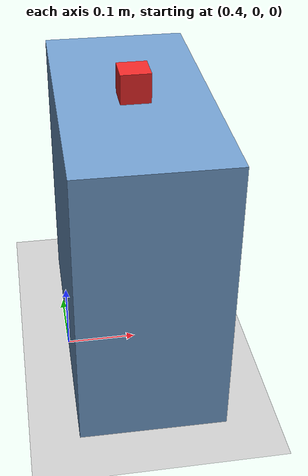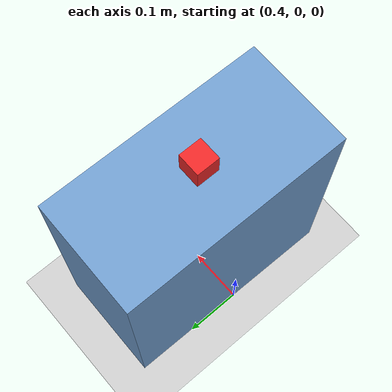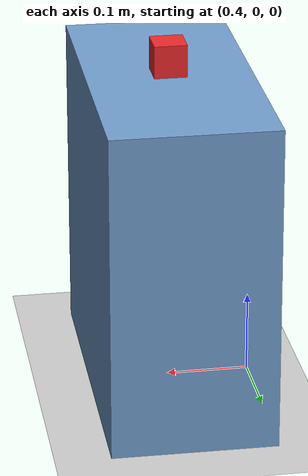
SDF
<sdf version="1.6">
 <world name="default">
  <light name="sun" type="directional">
   <pose>0 0 10 0 -0 0</pose>
   <diffuse>0.8 0.8 0.8 1</diffuse>
   <specular>0.2 0.2 0.2 1</specular>
   <attenuation>
    <range>1000</range>
    <constant>0.9</constant>
    <linear>0.01</linear>
    <quadratic>0.001</quadratic>
   </attenuation>
   <direction>-0.5 0.1 -0.9</direction>
  </light>
  <model name="ground_plane">
   <static>1</static>
   <link name="link">
    <collision name="collision">
     <geometry><plane><normal>0 0 1</normal><size>100 100</size></plane></geometry>
     <surface>
      <contact><collide_bitmask>65535</collide_bitmask></contact>
      <friction><ode><mu>100</mu><mu2>50</mu2></ode></friction>
     </surface>
    </collision>
    <visual name="visual">
     <cast_shadows>0</cast_shadows>
     <geometry><plane><normal>0 0 1</normal><size>100 100</size></plane></geometry>
     <material>
      <script><uri>file://media/materials/scripts/gazebo.material</uri><name>Gazebo/Grey</name></script>
     </material>
    </visual>
   </link>
  </model>
  <gravity>0 0 -9.8</gravity>
  <magnetic_field>6e-06 2.3e-05 -4.2e-05</magnetic_field>
  <atmosphere type="adiabatic"/>
  <physics name="default_physics" default="0" type="ode">
   <max_step_size>0.001</max_step_size>
   <real_time_factor>1</real_time_factor>
   <real_time_update_rate>1000</real_time_update_rate>
  </physics>
  <scene><ambient>0.4 0.4 0.4 1</ambient><background>0.7 0.7 0.7 1</background><shadows>1</shadows></scene>
  <audio><device>default</device></audio>
  <spherical_coordinates>
   <surface_model>EARTH_WGS84</surface_model>
   <latitude_deg>0</latitude_deg>
   <longitude_deg>0</longitude_deg>
   <elevation>0</elevation>
   <heading_deg>0</heading_deg>
  </spherical_coordinates>
  <model name="box">
   <link name="link">
    <inertial>
     <mass>1</mass>
     <inertia>
      <ixx>0.166667</ixx>
      <ixy>0</ixy>
      <ixz>0</ixz>
      <iyy>0.166667</iyy>
      <iyz>0</iyz>
      <izz>0.166667</izz>
     </inertia>
    </inertial>
    <visual name="visual">
     <geometry><box><size>0.2 0.4 0.4</size></box></geometry>
     <material>
      <script><name>Gazebo/Grey</name><uri>file://media/materials/scripts/gazebo.material</uri></script>
      <shader type="vertex"><normal_map>__default__</normal_map></shader>
      <ambient>0.447 0.624 0.812 1</ambient>
      <diffuse>0.7 0.7 0.7 1</diffuse>
      <specular>0.01 0.01 0.01 1</specular>
      <emissive>0 0 0 1</emissive>
     </material>
    </visual>
    <collision name="collision">
     <geometry><box><size>0.2 0.4 0.4</size></box></geometry>
     <surface>
      <friction>
       <ode><mu>1</mu><mu2>1</mu2><fdir1>0 0 0</fdir1><slip1>0</slip1><slip2>0</slip2></ode>
       <torsional>
        <coefficient>1</coefficient>
        <patch_radius>0</patch_radius>
        <surface_radius>0</surface_radius>
        <use_patch_radius>1</use_patch_radius>
        <ode><slip>0</slip></ode>
       </torsional>
      </friction>
      <bounce><restitution_coefficient>0</restitution_coefficient><threshold>1e+06</threshold></bounce>
      <contact>
       <collide_without_contact>0</collide_without_contact>
       <collide_without_contact_bitmask>1</collide_without_contact_bitmask>
       <collide_bitmask>1</collide_bitmask>
       <ode>
        <soft_cfm>0</soft_cfm>
        <soft_erp>0.2</soft_erp>
        <kp>1e+13</kp>
        <kd>1</kd>
        <max_vel>0.01</max_vel>
        <min_depth>0</min_depth>
       </ode>
       <bullet>
        <split_impulse>1</split_impulse>
        <split_impulse_penetration_threshold>-0.01</split_impulse_penetration_threshold>
        <soft_cfm>0</soft_cfm>
        <soft_erp>0.2</soft_erp>
        <kp>1e+13</kp>
        <kd>1</kd>
       </bullet>
      </contact>
     </surface>
    </collision>
   </link>
   <static>0</static>
   <pose>0.500004 0.00859 0.19984 7e-06 7e-06 -0.008785</pose>
  </model>
  <model name="small_box">
   <link name="link">
    <inertial>
     <mass>0.06528</mass>
     <inertia>
      <ixx>1.741e-05</ixx>
      <ixy>0</ixy>
      <ixz>0</ixz>
      <iyy>1.741e-05</iyy>
      <iyz>0</iyz>
      <izz>1.741e-05</izz>
     </inertia>
    </inertial>
    <visual name="visual">
     <geometry><box><size>0.04 0.04 0.04</size></box></geometry>
     <material>
      <script><name>Gazebo/Grey</name><uri>file://media/materials/scripts/gazebo.material</uri></script>
      <shader type="vertex"><normal_map>__default__</normal_map></shader>
      <ambient>0.937 0.161 0.161 1</ambient>
      <diffuse>0.7 0.7 0.7 1</diffuse>
      <specular>0.01 0.01 0.01 1</specular>
      <emissive>0 0 0 1</emissive>
     </material>
    </visual>
    <collision name="collision">
     <geometry><box><size>0.04 0.04 0.04</size></box></geometry>
     <surface>
      <friction>
       <ode><mu>1</mu><mu2>1</mu2><fdir1>0 0 0</fdir1><slip1>0</slip1><slip2>0</slip2></ode>
       <torsional>
        <coefficient>1</coefficient>
        <patch_radius>0</patch_radius>
        <surface_radius>0</surface_radius>
        <use_patch_radius>1</use_patch_radius>
        <ode><slip>0</slip></ode>
       </torsional>
      </friction>
      <bounce><restitution_coefficient>0</restitution_coefficient><threshold>1e+06</threshold></bounce>
      <contact>
       <collide_without_contact>0</collide_without_contact>
       <collide_without_contact_bitmask>1</collide_without_contact_bitmask>
       <collide_bitmask>1</collide_bitmask>
       <ode>
        <soft_cfm>0</soft_cfm>
        <soft_erp>0.2</soft_erp>
        <kp>1e+13</kp>
        <kd>1</kd>
        <max_vel>0.01</max_vel>
        <min_depth>0</min_depth>
       </ode>
       <bullet>
        <split_impulse>1</split_impulse>
        <split_impulse_penetration_threshold>-0.01</split_impulse_penetration_threshold>
        <soft_cfm>0</soft_cfm>
        <soft_erp>0.2</soft_erp>
        <kp>1e+13</kp>
        <kd>1</kd>
       </bullet>
      </contact>
     </surface>
    </collision>
   </link>
   <static>0</static>
   <pose>0.499754 0.000448 0.419888 1.3e-05 1.3e-05 -0.002152</pose>
  </model>
 </world>
</sdf>
